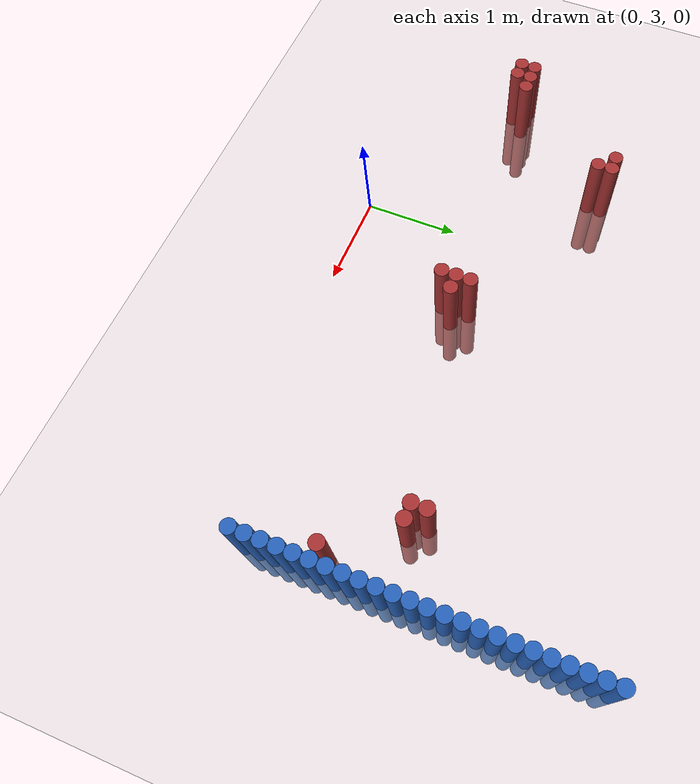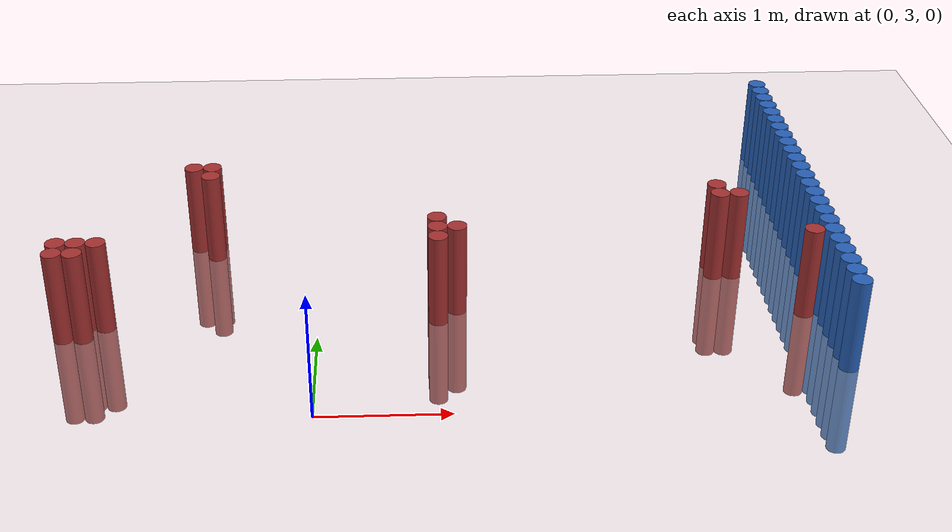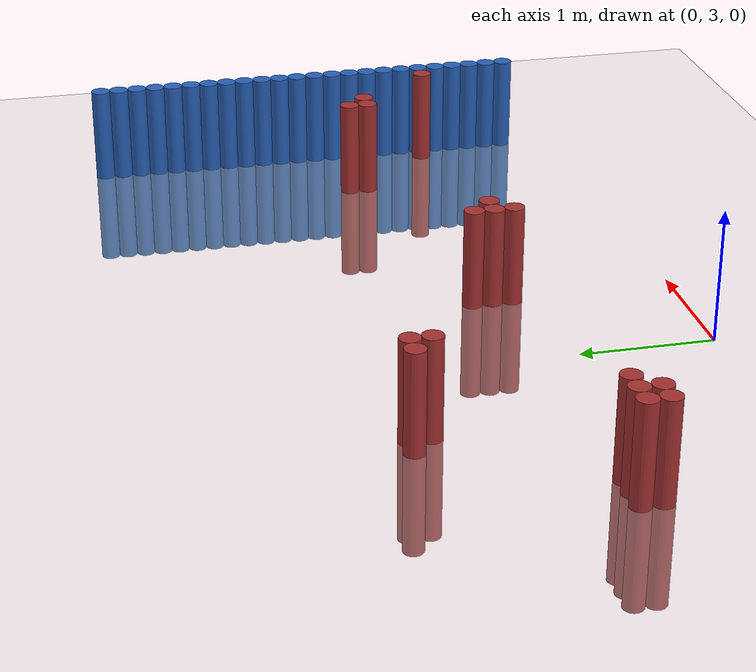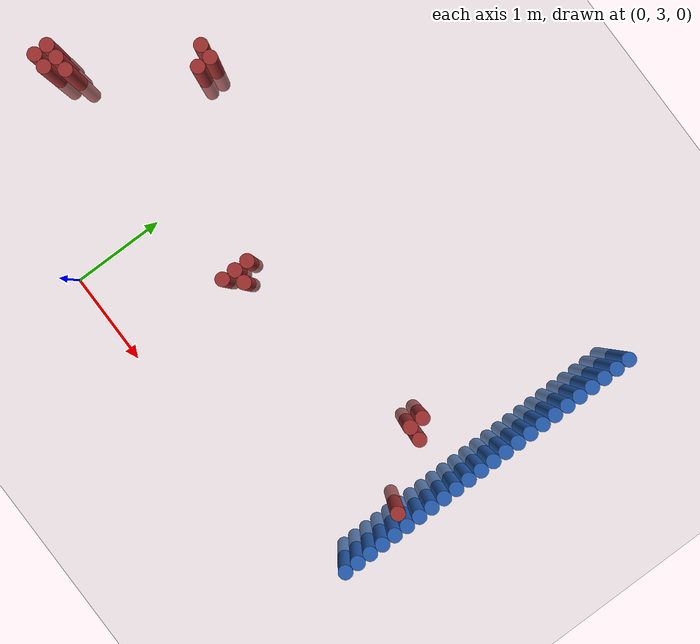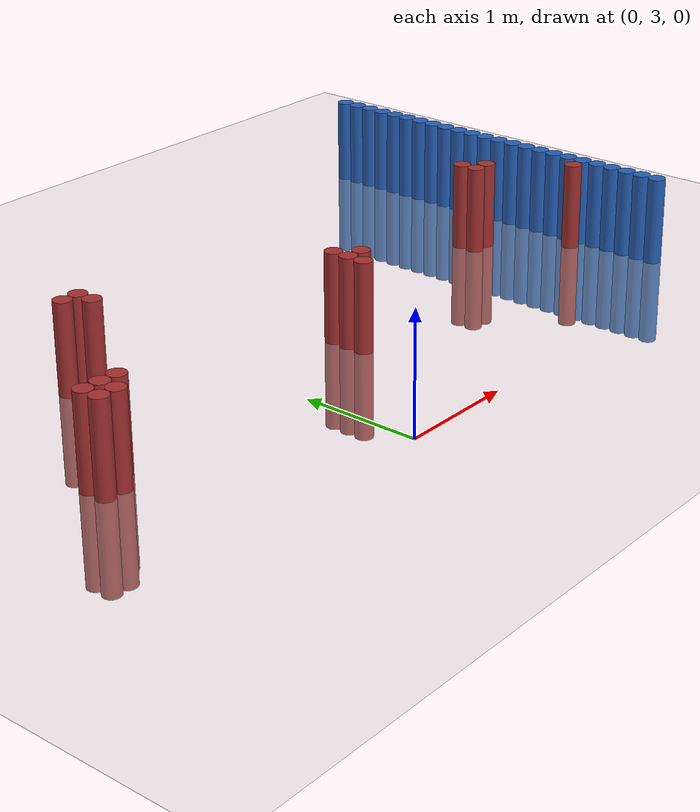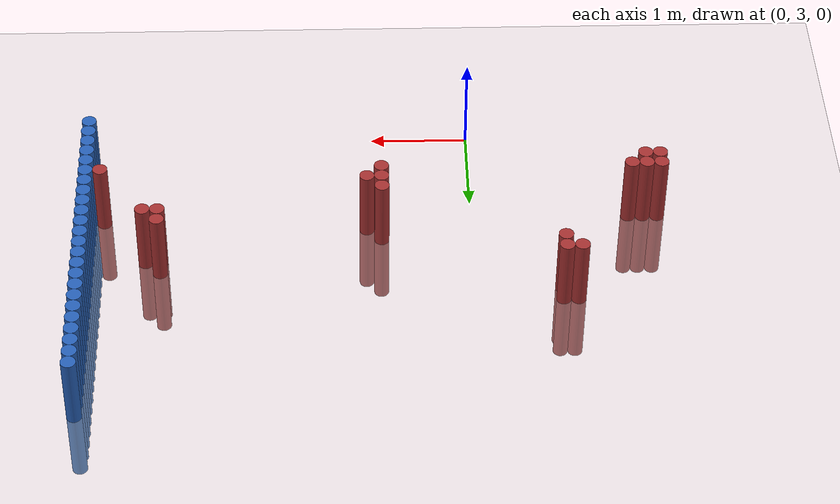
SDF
<sdf version="1.6">
 <world name="default">
  <model name="ground_plane">
   <static>1</static>
   <link name="link">
    <collision name="collision">
     <geometry><plane><normal>0 0 1</normal><size>100 100</size></plane></geometry>
     <surface><friction><ode><mu>100</mu><mu2>50</mu2></ode></friction></surface>
    </collision>
    <visual name="visual">
     <cast_shadows>0</cast_shadows>
     <geometry><plane><normal>0 0 1</normal><size>100 100</size></plane></geometry>
     <material>
      <script><uri>file://media/materials/scripts/gazebo.material</uri><name>Gazebo/Grey</name></script>
     </material>
    </visual>
   </link>
  </model>
  <model name="unit_cylinder_160">
   <static>1</static>
   <pose>3.925000 3.475000 0.000000 0.000000 0.000000 0.000000</pose>
   <link name="link">
    <inertial>
     <mass>1</mass>
     <inertia><ixx>0.145833</ixx><ixy>0</ixy><ixz>0</ixz><iyy>0.145833</iyy><iyz>0</iyz><izz>0.125</izz></inertia>
    </inertial>
    <collision name="collision">
     <geometry><cylinder><radius>0.075000</radius><length>1.5</length></cylinder></geometry>
    </collision>
    <visual name="visual">
     <geometry><cylinder><radius>0.075000</radius><length>1.5</length></cylinder></geometry>
     <material>
      <ambient>0.152000 0.379000 0.720000 1</ambient>
      <diffuse>0.152000 0.379000 0.720000 1</diffuse>
     </material>
     <material>
      <script><name>Gazebo/Grey</name><uri>file://media/materials/scripts/gazebo.material</uri></script>
     </material>
    </visual>
   </link>
  </model>
  <model name="unit_cylinder_162">
   <static>1</static>
   <pose>3.925000 3.625000 0.000000 0.000000 0.000000 0.000000</pose>
   <link name="link">
    <inertial>
     <mass>1</mass>
     <inertia><ixx>0.145833</ixx><ixy>0</ixy><ixz>0</ixz><iyy>0.145833</iyy><iyz>0</iyz><izz>0.125</izz></inertia>
    </inertial>
    <collision name="collision">
     <geometry><cylinder><radius>0.075000</radius><length>1.5</length></cylinder></geometry>
    </collision>
    <visual name="visual">
     <geometry><cylinder><radius>0.075000</radius><length>1.5</length></cylinder></geometry>
     <material>
      <ambient>0.152000 0.379000 0.720000 1</ambient>
      <diffuse>0.152000 0.379000 0.720000 1</diffuse>
     </material>
     <material>
      <script><name>Gazebo/Grey</name><uri>file://media/materials/scripts/gazebo.material</uri></script>
     </material>
    </visual>
   </link>
  </model>
  <model name="unit_cylinder_164">
   <static>1</static>
   <pose>3.925000 3.775000 0.000000 0.000000 0.000000 0.000000</pose>
   <link name="link">
    <inertial>
     <mass>1</mass>
     <inertia><ixx>0.145833</ixx><ixy>0</ixy><ixz>0</ixz><iyy>0.145833</iyy><iyz>0</iyz><izz>0.125</izz></inertia>
    </inertial>
    <collision name="collision">
     <geometry><cylinder><radius>0.075000</radius><length>1.5</length></cylinder></geometry>
    </collision>
    <visual name="visual">
     <geometry><cylinder><radius>0.075000</radius><length>1.5</length></cylinder></geometry>
     <material>
      <ambient>0.152000 0.379000 0.720000 1</ambient>
      <diffuse>0.152000 0.379000 0.720000 1</diffuse>
     </material>
     <material>
      <script><name>Gazebo/Grey</name><uri>file://media/materials/scripts/gazebo.material</uri></script>
     </material>
    </visual>
   </link>
  </model>
  <model name="unit_cylinder_166">
   <static>1</static>
   <pose>3.925000 3.925000 0.000000 0.000000 0.000000 0.000000</pose>
   <link name="link">
    <inertial>
     <mass>1</mass>
     <inertia><ixx>0.145833</ixx><ixy>0</ixy><ixz>0</ixz><iyy>0.145833</iyy><iyz>0</iyz><izz>0.125</izz></inertia>
    </inertial>
    <collision name="collision">
     <geometry><cylinder><radius>0.075000</radius><length>1.5</length></cylinder></geometry>
    </collision>
    <visual name="visual">
     <geometry><cylinder><radius>0.075000</radius><length>1.5</length></cylinder></geometry>
     <material>
      <ambient>0.152000 0.379000 0.720000 1</ambient>
      <diffuse>0.152000 0.379000 0.720000 1</diffuse>
     </material>
     <material>
      <script><name>Gazebo/Grey</name><uri>file://media/materials/scripts/gazebo.material</uri></script>
     </material>
    </visual>
   </link>
  </model>
  <model name="unit_cylinder_168">
   <static>1</static>
   <pose>3.925000 4.075000 0.000000 0.000000 0.000000 0.000000</pose>
   <link name="link">
    <inertial>
     <mass>1</mass>
     <inertia><ixx>0.145833</ixx><ixy>0</ixy><ixz>0</ixz><iyy>0.145833</iyy><iyz>0</iyz><izz>0.125</izz></inertia>
    </inertial>
    <collision name="collision">
     <geometry><cylinder><radius>0.075000</radius><length>1.5</length></cylinder></geometry>
    </collision>
    <visual name="visual">
     <geometry><cylinder><radius>0.075000</radius><length>1.5</length></cylinder></geometry>
     <material>
      <ambient>0.152000 0.379000 0.720000 1</ambient>
      <diffuse>0.152000 0.379000 0.720000 1</diffuse>
     </material>
     <material>
      <script><name>Gazebo/Grey</name><uri>file://media/materials/scripts/gazebo.material</uri></script>
     </material>
    </visual>
   </link>
  </model>
  <model name="unit_cylinder_170">
   <static>1</static>
   <pose>3.925000 4.225000 0.000000 0.000000 0.000000 0.000000</pose>
   <link name="link">
    <inertial>
     <mass>1</mass>
     <inertia><ixx>0.145833</ixx><ixy>0</ixy><ixz>0</ixz><iyy>0.145833</iyy><iyz>0</iyz><izz>0.125</izz></inertia>
    </inertial>
    <collision name="collision">
     <geometry><cylinder><radius>0.075000</radius><length>1.5</length></cylinder></geometry>
    </collision>
    <visual name="visual">
     <geometry><cylinder><radius>0.075000</radius><length>1.5</length></cylinder></geometry>
     <material>
      <ambient>0.152000 0.379000 0.720000 1</ambient>
      <diffuse>0.152000 0.379000 0.720000 1</diffuse>
     </material>
     <material>
      <script><name>Gazebo/Grey</name><uri>file://media/materials/scripts/gazebo.material</uri></script>
     </material>
    </visual>
   </link>
  </model>
  <model name="unit_cylinder_172">
   <static>1</static>
   <pose>3.925000 4.375000 0.000000 0.000000 0.000000 0.000000</pose>
   <link name="link">
    <inertial>
     <mass>1</mass>
     <inertia><ixx>0.145833</ixx><ixy>0</ixy><ixz>0</ixz><iyy>0.145833</iyy><iyz>0</iyz><izz>0.125</izz></inertia>
    </inertial>
    <collision name="collision">
     <geometry><cylinder><radius>0.075000</radius><length>1.5</length></cylinder></geometry>
    </collision>
    <visual name="visual">
     <geometry><cylinder><radius>0.075000</radius><length>1.5</length></cylinder></geometry>
     <material>
      <ambient>0.152000 0.379000 0.720000 1</ambient>
      <diffuse>0.152000 0.379000 0.720000 1</diffuse>
     </material>
     <material>
      <script><name>Gazebo/Grey</name><uri>file://media/materials/scripts/gazebo.material</uri></script>
     </material>
    </visual>
   </link>
  </model>
  <model name="unit_cylinder_174">
   <static>1</static>
   <pose>3.925000 4.525000 0.000000 0.000000 0.000000 0.000000</pose>
   <link name="link">
    <inertial>
     <mass>1</mass>
     <inertia><ixx>0.145833</ixx><ixy>0</ixy><ixz>0</ixz><iyy>0.145833</iyy><iyz>0</iyz><izz>0.125</izz></inertia>
    </inertial>
    <collision name="collision">
     <geometry><cylinder><radius>0.075000</radius><length>1.5</length></cylinder></geometry>
    </collision>
    <visual name="visual">
     <geometry><cylinder><radius>0.075000</radius><length>1.5</length></cylinder></geometry>
     <material>
      <ambient>0.152000 0.379000 0.720000 1</ambient>
      <diffuse>0.152000 0.379000 0.720000 1</diffuse>
     </material>
     <material>
      <script><name>Gazebo/Grey</name><uri>file://media/materials/scripts/gazebo.material</uri></script>
     </material>
    </visual>
   </link>
  </model>
  <model name="unit_cylinder_176">
   <static>1</static>
   <pose>3.925000 4.675000 0.000000 0.000000 0.000000 0.000000</pose>
   <link name="link">
    <inertial>
     <mass>1</mass>
     <inertia><ixx>0.145833</ixx><ixy>0</ixy><ixz>0</ixz><iyy>0.145833</iyy><iyz>0</iyz><izz>0.125</izz></inertia>
    </inertial>
    <collision name="collision">
     <geometry><cylinder><radius>0.075000</radius><length>1.5</length></cylinder></geometry>
    </collision>
    <visual name="visual">
     <geometry><cylinder><radius>0.075000</radius><length>1.5</length></cylinder></geometry>
     <material>
      <ambient>0.152000 0.379000 0.720000 1</ambient>
      <diffuse>0.152000 0.379000 0.720000 1</diffuse>
     </material>
     <material>
      <script><name>Gazebo/Grey</name><uri>file://media/materials/scripts/gazebo.material</uri></script>
     </material>
    </visual>
   </link>
  </model>
  <model name="unit_cylinder_178">
   <static>1</static>
   <pose>3.925000 4.825000 0.000000 0.000000 0.000000 0.000000</pose>
   <link name="link">
    <inertial>
     <mass>1</mass>
     <inertia><ixx>0.145833</ixx><ixy>0</ixy><ixz>0</ixz><iyy>0.145833</iyy><iyz>0</iyz><izz>0.125</izz></inertia>
    </inertial>
    <collision name="collision">
     <geometry><cylinder><radius>0.075000</radius><length>1.5</length></cylinder></geometry>
    </collision>
    <visual name="visual">
     <geometry><cylinder><radius>0.075000</radius><length>1.5</length></cylinder></geometry>
     <material>
      <ambient>0.152000 0.379000 0.720000 1</ambient>
      <diffuse>0.152000 0.379000 0.720000 1</diffuse>
     </material>
     <material>
      <script><name>Gazebo/Grey</name><uri>file://media/materials/scripts/gazebo.material</uri></script>
     </material>
    </visual>
   </link>
  </model>
  <model name="unit_cylinder_180">
   <static>1</static>
   <pose>3.925000 4.975000 0.000000 0.000000 0.000000 0.000000</pose>
   <link name="link">
    <inertial>
     <mass>1</mass>
     <inertia><ixx>0.145833</ixx><ixy>0</ixy><ixz>0</ixz><iyy>0.145833</iyy><iyz>0</iyz><izz>0.125</izz></inertia>
    </inertial>
    <collision name="collision">
     <geometry><cylinder><radius>0.075000</radius><length>1.5</length></cylinder></geometry>
    </collision>
    <visual name="visual">
     <geometry><cylinder><radius>0.075000</radius><length>1.5</length></cylinder></geometry>
     <material>
      <ambient>0.152000 0.379000 0.720000 1</ambient>
      <diffuse>0.152000 0.379000 0.720000 1</diffuse>
     </material>
     <material>
      <script><name>Gazebo/Grey</name><uri>file://media/materials/scripts/gazebo.material</uri></script>
     </material>
    </visual>
   </link>
  </model>
  <model name="unit_cylinder_182">
   <static>1</static>
   <pose>3.925000 5.125000 0.000000 0.000000 0.000000 0.000000</pose>
   <link name="link">
    <inertial>
     <mass>1</mass>
     <inertia><ixx>0.145833</ixx><ixy>0</ixy><ixz>0</ixz><iyy>0.145833</iyy><iyz>0</iyz><izz>0.125</izz></inertia>
    </inertial>
    <collision name="collision">
     <geometry><cylinder><radius>0.075000</radius><length>1.5</length></cylinder></geometry>
    </collision>
    <visual name="visual">
     <geometry><cylinder><radius>0.075000</radius><length>1.5</length></cylinder></geometry>
     <material>
      <ambient>0.152000 0.379000 0.720000 1</ambient>
      <diffuse>0.152000 0.379000 0.720000 1</diffuse>
     </material>
     <material>
      <script><name>Gazebo/Grey</name><uri>file://media/materials/scripts/gazebo.material</uri></script>
     </material>
    </visual>
   </link>
  </model>
  <model name="unit_cylinder_184">
   <static>1</static>
   <pose>3.925000 5.275000 0.000000 0.000000 0.000000 0.000000</pose>
   <link name="link">
    <inertial>
     <mass>1</mass>
     <inertia><ixx>0.145833</ixx><ixy>0</ixy><ixz>0</ixz><iyy>0.145833</iyy><iyz>0</iyz><izz>0.125</izz></inertia>
    </inertial>
    <collision name="collision">
     <geometry><cylinder><radius>0.075000</radius><length>1.5</length></cylinder></geometry>
    </collision>
    <visual name="visual">
     <geometry><cylinder><radius>0.075000</radius><length>1.5</length></cylinder></geometry>
     <material>
      <ambient>0.152000 0.379000 0.720000 1</ambient>
      <diffuse>0.152000 0.379000 0.720000 1</diffuse>
     </material>
     <material>
      <script><name>Gazebo/Grey</name><uri>file://media/materials/scripts/gazebo.material</uri></script>
     </material>
    </visual>
   </link>
  </model>
  <model name="unit_cylinder_186">
   <static>1</static>
   <pose>3.925000 5.425000 0.000000 0.000000 0.000000 0.000000</pose>
   <link name="link">
    <inertial>
     <mass>1</mass>
     <inertia><ixx>0.145833</ixx><ixy>0</ixy><ixz>0</ixz><iyy>0.145833</iyy><iyz>0</iyz><izz>0.125</izz></inertia>
    </inertial>
    <collision name="collision">
     <geometry><cylinder><radius>0.075000</radius><length>1.5</length></cylinder></geometry>
    </collision>
    <visual name="visual">
     <geometry><cylinder><radius>0.075000</radius><length>1.5</length></cylinder></geometry>
     <material>
      <ambient>0.152000 0.379000 0.720000 1</ambient>
      <diffuse>0.152000 0.379000 0.720000 1</diffuse>
     </material>
     <material>
      <script><name>Gazebo/Grey</name><uri>file://media/materials/scripts/gazebo.material</uri></script>
     </material>
    </visual>
   </link>
  </model>
  <model name="unit_cylinder_188">
   <static>1</static>
   <pose>3.925000 5.575000 0.000000 0.000000 0.000000 0.000000</pose>
   <link name="link">
    <inertial>
     <mass>1</mass>
     <inertia><ixx>0.145833</ixx><ixy>0</ixy><ixz>0</ixz><iyy>0.145833</iyy><iyz>0</iyz><izz>0.125</izz></inertia>
    </inertial>
    <collision name="collision">
     <geometry><cylinder><radius>0.075000</radius><length>1.5</length></cylinder></geometry>
    </collision>
    <visual name="visual">
     <geometry><cylinder><radius>0.075000</radius><length>1.5</length></cylinder></geometry>
     <material>
      <ambient>0.152000 0.379000 0.720000 1</ambient>
      <diffuse>0.152000 0.379000 0.720000 1</diffuse>
     </material>
     <material>
      <script><name>Gazebo/Grey</name><uri>file://media/materials/scripts/gazebo.material</uri></script>
     </material>
    </visual>
   </link>
  </model>
  <model name="unit_cylinder_190">
   <static>1</static>
   <pose>3.925000 5.725000 0.000000 0.000000 0.000000 0.000000</pose>
   <link name="link">
    <inertial>
     <mass>1</mass>
     <inertia><ixx>0.145833</ixx><ixy>0</ixy><ixz>0</ixz><iyy>0.145833</iyy><iyz>0</iyz><izz>0.125</izz></inertia>
    </inertial>
    <collision name="collision">
     <geometry><cylinder><radius>0.075000</radius><length>1.5</length></cylinder></geometry>
    </collision>
    <visual name="visual">
     <geometry><cylinder><radius>0.075000</radius><length>1.5</length></cylinder></geometry>
     <material>
      <ambient>0.152000 0.379000 0.720000 1</ambient>
      <diffuse>0.152000 0.379000 0.720000 1</diffuse>
     </material>
     <material>
      <script><name>Gazebo/Grey</name><uri>file://media/materials/scripts/gazebo.material</uri></script>
     </material>
    </visual>
   </link>
  </model>
  <model name="unit_cylinder_192">
   <static>1</static>
   <pose>3.925000 5.875000 0.000000 0.000000 0.000000 0.000000</pose>
   <link name="link">
    <inertial>
     <mass>1</mass>
     <inertia><ixx>0.145833</ixx><ixy>0</ixy><ixz>0</ixz><iyy>0.145833</iyy><iyz>0</iyz><izz>0.125</izz></inertia>
    </inertial>
    <collision name="collision">
     <geometry><cylinder><radius>0.075000</radius><length>1.5</length></cylinder></geometry>
    </collision>
    <visual name="visual">
     <geometry><cylinder><radius>0.075000</radius><length>1.5</length></cylinder></geometry>
     <material>
      <ambient>0.152000 0.379000 0.720000 1</ambient>
      <diffuse>0.152000 0.379000 0.720000 1</diffuse>
     </material>
     <material>
      <script><name>Gazebo/Grey</name><uri>file://media/materials/scripts/gazebo.material</uri></script>
     </material>
    </visual>
   </link>
  </model>
  <model name="unit_cylinder_194">
   <static>1</static>
   <pose>3.925000 6.025000 0.000000 0.000000 0.000000 0.000000</pose>
   <link name="link">
    <inertial>
     <mass>1</mass>
     <inertia><ixx>0.145833</ixx><ixy>0</ixy><ixz>0</ixz><iyy>0.145833</iyy><iyz>0</iyz><izz>0.125</izz></inertia>
    </inertial>
    <collision name="collision">
     <geometry><cylinder><radius>0.075000</radius><length>1.5</length></cylinder></geometry>
    </collision>
    <visual name="visual">
     <geometry><cylinder><radius>0.075000</radius><length>1.5</length></cylinder></geometry>
     <material>
      <ambient>0.152000 0.379000 0.720000 1</ambient>
      <diffuse>0.152000 0.379000 0.720000 1</diffuse>
     </material>
     <material>
      <script><name>Gazebo/Grey</name><uri>file://media/materials/scripts/gazebo.material</uri></script>
     </material>
    </visual>
   </link>
  </model>
  <model name="unit_cylinder_196">
   <static>1</static>
   <pose>3.925000 6.175000 0.000000 0.000000 0.000000 0.000000</pose>
   <link name="link">
    <inertial>
     <mass>1</mass>
     <inertia><ixx>0.145833</ixx><ixy>0</ixy><ixz>0</ixz><iyy>0.145833</iyy><iyz>0</iyz><izz>0.125</izz></inertia>
    </inertial>
    <collision name="collision">
     <geometry><cylinder><radius>0.075000</radius><length>1.5</length></cylinder></geometry>
    </collision>
    <visual name="visual">
     <geometry><cylinder><radius>0.075000</radius><length>1.5</length></cylinder></geometry>
     <material>
      <ambient>0.152000 0.379000 0.720000 1</ambient>
      <diffuse>0.152000 0.379000 0.720000 1</diffuse>
     </material>
     <material>
      <script><name>Gazebo/Grey</name><uri>file://media/materials/scripts/gazebo.material</uri></script>
     </material>
    </visual>
   </link>
  </model>
  <model name="unit_cylinder_198">
   <static>1</static>
   <pose>3.925000 6.325000 0.000000 0.000000 0.000000 0.000000</pose>
   <link name="link">
    <inertial>
     <mass>1</mass>
     <inertia><ixx>0.145833</ixx><ixy>0</ixy><ixz>0</ixz><iyy>0.145833</iyy><iyz>0</iyz><izz>0.125</izz></inertia>
    </inertial>
    <collision name="collision">
     <geometry><cylinder><radius>0.075000</radius><length>1.5</length></cylinder></geometry>
    </collision>
    <visual name="visual">
     <geometry><cylinder><radius>0.075000</radius><length>1.5</length></cylinder></geometry>
     <material>
      <ambient>0.152000 0.379000 0.720000 1</ambient>
      <diffuse>0.152000 0.379000 0.720000 1</diffuse>
     </material>
     <material>
      <script><name>Gazebo/Grey</name><uri>file://media/materials/scripts/gazebo.material</uri></script>
     </material>
    </visual>
   </link>
  </model>
  <model name="unit_cylinder_200">
   <static>1</static>
   <pose>3.925000 6.475000 0.000000 0.000000 0.000000 0.000000</pose>
   <link name="link">
    <inertial>
     <mass>1</mass>
     <inertia><ixx>0.145833</ixx><ixy>0</ixy><ixz>0</ixz><iyy>0.145833</iyy><iyz>0</iyz><izz>0.125</izz></inertia>
    </inertial>
    <collision name="collision">
     <geometry><cylinder><radius>0.075000</radius><length>1.5</length></cylinder></geometry>
    </collision>
    <visual name="visual">
     <geometry><cylinder><radius>0.075000</radius><length>1.5</length></cylinder></geometry>
     <material>
      <ambient>0.152000 0.379000 0.720000 1</ambient>
      <diffuse>0.152000 0.379000 0.720000 1</diffuse>
     </material>
     <material>
      <script><name>Gazebo/Grey</name><uri>file://media/materials/scripts/gazebo.material</uri></script>
     </material>
    </visual>
   </link>
  </model>
  <model name="unit_cylinder_202">
   <static>1</static>
   <pose>3.925000 6.625000 0.000000 0.000000 0.000000 0.000000</pose>
   <link name="link">
    <inertial>
     <mass>1</mass>
     <inertia><ixx>0.145833</ixx><ixy>0</ixy><ixz>0</ixz><iyy>0.145833</iyy><iyz>0</iyz><izz>0.125</izz></inertia>
    </inertial>
    <collision name="collision">
     <geometry><cylinder><radius>0.075000</radius><length>1.5</length></cylinder></geometry>
    </collision>
    <visual name="visual">
     <geometry><cylinder><radius>0.075000</radius><length>1.5</length></cylinder></geometry>
     <material>
      <ambient>0.152000 0.379000 0.720000 1</ambient>
      <diffuse>0.152000 0.379000 0.720000 1</diffuse>
     </material>
     <material>
      <script><name>Gazebo/Grey</name><uri>file://media/materials/scripts/gazebo.material</uri></script>
     </material>
    </visual>
   </link>
  </model>
  <model name="unit_cylinder_204">
   <static>1</static>
   <pose>3.925000 6.775000 0.000000 0.000000 0.000000 0.000000</pose>
   <link name="link">
    <inertial>
     <mass>1</mass>
     <inertia><ixx>0.145833</ixx><ixy>0</ixy><ixz>0</ixz><iyy>0.145833</iyy><iyz>0</iyz><izz>0.125</izz></inertia>
    </inertial>
    <collision name="collision">
     <geometry><cylinder><radius>0.075000</radius><length>1.5</length></cylinder></geometry>
    </collision>
    <visual name="visual">
     <geometry><cylinder><radius>0.075000</radius><length>1.5</length></cylinder></geometry>
     <material>
      <ambient>0.152000 0.379000 0.720000 1</ambient>
      <diffuse>0.152000 0.379000 0.720000 1</diffuse>
     </material>
     <material>
      <script><name>Gazebo/Grey</name><uri>file://media/materials/scripts/gazebo.material</uri></script>
     </material>
    </visual>
   </link>
  </model>
  <model name="unit_cylinder_206">
   <static>1</static>
   <pose>3.925000 6.925000 0.000000 0.000000 0.000000 0.000000</pose>
   <link name="link">
    <inertial>
     <mass>1</mass>
     <inertia><ixx>0.145833</ixx><ixy>0</ixy><ixz>0</ixz><iyy>0.145833</iyy><iyz>0</iyz><izz>0.125</izz></inertia>
    </inertial>
    <collision name="collision">
     <geometry><cylinder><radius>0.075000</radius><length>1.5</length></cylinder></geometry>
    </collision>
    <visual name="visual">
     <geometry><cylinder><radius>0.075000</radius><length>1.5</length></cylinder></geometry>
     <material>
      <ambient>0.152000 0.379000 0.720000 1</ambient>
      <diffuse>0.152000 0.379000 0.720000 1</diffuse>
     </material>
     <material>
      <script><name>Gazebo/Grey</name><uri>file://media/materials/scripts/gazebo.material</uri></script>
     </material>
    </visual>
   </link>
  </model>
  <model name="unit_cylinder_302">
   <static>1</static>
   <pose>-1.925000 4.075000 0.000000 0.000000 0.000000 0.000000</pose>
   <link name="link">
    <inertial>
     <mass>1</mass>
     <inertia><ixx>0.145833</ixx><ixy>0</ixy><ixz>0</ixz><iyy>0.145833</iyy><iyz>0</iyz><izz>0.125</izz></inertia>
    </inertial>
    <collision name="collision">
     <geometry><cylinder><radius>0.075000</radius><length>1.5</length></cylinder></geometry>
    </collision>
    <visual name="visual">
     <geometry><cylinder><radius>0.075000</radius><length>1.5</length></cylinder></geometry>
     <material>
      <ambient>0.648000 0.192000 0.192000 1</ambient>
      <diffuse>0.648000 0.192000 0.192000 1</diffuse>
     </material>
     <material>
      <script><name>Gazebo/Grey</name><uri>file://media/materials/scripts/gazebo.material</uri></script>
     </material>
    </visual>
   </link>
  </model>
  <model name="unit_cylinder_303">
   <static>1</static>
   <pose>-1.925000 4.225000 0.000000 0.000000 0.000000 0.000000</pose>
   <link name="link">
    <inertial>
     <mass>1</mass>
     <inertia><ixx>0.145833</ixx><ixy>0</ixy><ixz>0</ixz><iyy>0.145833</iyy><iyz>0</iyz><izz>0.125</izz></inertia>
    </inertial>
    <collision name="collision">
     <geometry><cylinder><radius>0.075000</radius><length>1.5</length></cylinder></geometry>
    </collision>
    <visual name="visual">
     <geometry><cylinder><radius>0.075000</radius><length>1.5</length></cylinder></geometry>
     <material>
      <ambient>0.648000 0.192000 0.192000 1</ambient>
      <diffuse>0.648000 0.192000 0.192000 1</diffuse>
     </material>
     <material>
      <script><name>Gazebo/Grey</name><uri>file://media/materials/scripts/gazebo.material</uri></script>
     </material>
    </visual>
   </link>
  </model>
  <model name="unit_cylinder_304">
   <static>1</static>
   <pose>-1.775000 4.075000 0.000000 0.000000 0.000000 0.000000</pose>
   <link name="link">
    <inertial>
     <mass>1</mass>
     <inertia><ixx>0.145833</ixx><ixy>0</ixy><ixz>0</ixz><iyy>0.145833</iyy><iyz>0</iyz><izz>0.125</izz></inertia>
    </inertial>
    <collision name="collision">
     <geometry><cylinder><radius>0.075000</radius><length>1.5</length></cylinder></geometry>
    </collision>
    <visual name="visual">
     <geometry><cylinder><radius>0.075000</radius><length>1.5</length></cylinder></geometry>
     <material>
      <ambient>0.648000 0.192000 0.192000 1</ambient>
      <diffuse>0.648000 0.192000 0.192000 1</diffuse>
     </material>
     <material>
      <script><name>Gazebo/Grey</name><uri>file://media/materials/scripts/gazebo.material</uri></script>
     </material>
    </visual>
   </link>
  </model>
  <model name="unit_cylinder_305">
   <static>1</static>
   <pose>-1.775000 4.225000 0.000000 0.000000 0.000000 0.000000</pose>
   <link name="link">
    <inertial>
     <mass>1</mass>
     <inertia><ixx>0.145833</ixx><ixy>0</ixy><ixz>0</ixz><iyy>0.145833</iyy><iyz>0</iyz><izz>0.125</izz></inertia>
    </inertial>
    <collision name="collision">
     <geometry><cylinder><radius>0.075000</radius><length>1.5</length></cylinder></geometry>
    </collision>
    <visual name="visual">
     <geometry><cylinder><radius>0.075000</radius><length>1.5</length></cylinder></geometry>
     <material>
      <ambient>0.648000 0.192000 0.192000 1</ambient>
      <diffuse>0.648000 0.192000 0.192000 1</diffuse>
     </material>
     <material>
      <script><name>Gazebo/Grey</name><uri>file://media/materials/scripts/gazebo.material</uri></script>
     </material>
    </visual>
   </link>
  </model>
  <model name="unit_cylinder_306">
   <static>1</static>
   <pose>-1.625000 4.225000 0.000000 0.000000 0.000000 0.000000</pose>
   <link name="link">
    <inertial>
     <mass>1</mass>
     <inertia><ixx>0.145833</ixx><ixy>0</ixy><ixz>0</ixz><iyy>0.145833</iyy><iyz>0</iyz><izz>0.125</izz></inertia>
    </inertial>
    <collision name="collision">
     <geometry><cylinder><radius>0.075000</radius><length>1.5</length></cylinder></geometry>
    </collision>
    <visual name="visual">
     <geometry><cylinder><radius>0.075000</radius><length>1.5</length></cylinder></geometry>
     <material>
      <ambient>0.648000 0.192000 0.192000 1</ambient>
      <diffuse>0.648000 0.192000 0.192000 1</diffuse>
     </material>
     <material>
      <script><name>Gazebo/Grey</name><uri>file://media/materials/scripts/gazebo.material</uri></script>
     </material>
    </visual>
   </link>
  </model>
  <model name="unit_cylinder_310">
   <static>1</static>
   <pose>-1.025000 5.425000 0.000000 0.000000 0.000000 0.000000</pose>
   <link name="link">
    <inertial>
     <mass>1</mass>
     <inertia><ixx>0.145833</ixx><ixy>0</ixy><ixz>0</ixz><iyy>0.145833</iyy><iyz>0</iyz><izz>0.125</izz></inertia>
    </inertial>
    <collision name="collision">
     <geometry><cylinder><radius>0.075000</radius><length>1.5</length></cylinder></geometry>
    </collision>
    <visual name="visual">
     <geometry><cylinder><radius>0.075000</radius><length>1.5</length></cylinder></geometry>
     <material>
      <ambient>0.648000 0.192000 0.192000 1</ambient>
      <diffuse>0.648000 0.192000 0.192000 1</diffuse>
     </material>
     <material>
      <script><name>Gazebo/Grey</name><uri>file://media/materials/scripts/gazebo.material</uri></script>
     </material>
    </visual>
   </link>
  </model>
  <model name="unit_cylinder_312">
   <static>1</static>
   <pose>-0.875000 5.275000 0.000000 0.000000 0.000000 0.000000</pose>
   <link name="link">
    <inertial>
     <mass>1</mass>
     <inertia><ixx>0.145833</ixx><ixy>0</ixy><ixz>0</ixz><iyy>0.145833</iyy><iyz>0</iyz><izz>0.125</izz></inertia>
    </inertial>
    <collision name="collision">
     <geometry><cylinder><radius>0.075000</radius><length>1.5</length></cylinder></geometry>
    </collision>
    <visual name="visual">
     <geometry><cylinder><radius>0.075000</radius><length>1.5</length></cylinder></geometry>
     <material>
      <ambient>0.648000 0.192000 0.192000 1</ambient>
      <diffuse>0.648000 0.192000 0.192000 1</diffuse>
     </material>
     <material>
      <script><name>Gazebo/Grey</name><uri>file://media/materials/scripts/gazebo.material</uri></script>
     </material>
    </visual>
   </link>
  </model>
  <model name="unit_cylinder_313">
   <static>1</static>
   <pose>-0.875000 5.425000 0.000000 0.000000 0.000000 0.000000</pose>
   <link name="link">
    <inertial>
     <mass>1</mass>
     <inertia><ixx>0.145833</ixx><ixy>0</ixy><ixz>0</ixz><iyy>0.145833</iyy><iyz>0</iyz><izz>0.125</izz></inertia>
    </inertial>
    <collision name="collision">
     <geometry><cylinder><radius>0.075000</radius><length>1.5</length></cylinder></geometry>
    </collision>
    <visual name="visual">
     <geometry><cylinder><radius>0.075000</radius><length>1.5</length></cylinder></geometry>
     <material>
      <ambient>0.648000 0.192000 0.192000 1</ambient>
      <diffuse>0.648000 0.192000 0.192000 1</diffuse>
     </material>
     <material>
      <script><name>Gazebo/Grey</name><uri>file://media/materials/scripts/gazebo.material</uri></script>
     </material>
    </visual>
   </link>
  </model>
  <model name="unit_cylinder_334">
   <static>1</static>
   <pose>0.925000 4.225000 0.000000 0.000000 0.000000 0.000000</pose>
   <link name="link">
    <inertial>
     <mass>1</mass>
     <inertia><ixx>0.145833</ixx><ixy>0</ixy><ixz>0</ixz><iyy>0.145833</iyy><iyz>0</iyz><izz>0.125</izz></inertia>
    </inertial>
    <collision name="collision">
     <geometry><cylinder><radius>0.075000</radius><length>1.5</length></cylinder></geometry>
    </collision>
    <visual name="visual">
     <geometry><cylinder><radius>0.075000</radius><length>1.5</length></cylinder></geometry>
     <material>
      <ambient>0.648000 0.192000 0.192000 1</ambient>
      <diffuse>0.648000 0.192000 0.192000 1</diffuse>
     </material>
     <material>
      <script><name>Gazebo/Grey</name><uri>file://media/materials/scripts/gazebo.material</uri></script>
     </material>
    </visual>
   </link>
  </model>
  <model name="unit_cylinder_335">
   <static>1</static>
   <pose>0.925000 4.375000 0.000000 0.000000 0.000000 0.000000</pose>
   <link name="link">
    <inertial>
     <mass>1</mass>
     <inertia><ixx>0.145833</ixx><ixy>0</ixy><ixz>0</ixz><iyy>0.145833</iyy><iyz>0</iyz><izz>0.125</izz></inertia>
    </inertial>
    <collision name="collision">
     <geometry><cylinder><radius>0.075000</radius><length>1.5</length></cylinder></geometry>
    </collision>
    <visual name="visual">
     <geometry><cylinder><radius>0.075000</radius><length>1.5</length></cylinder></geometry>
     <material>
      <ambient>0.648000 0.192000 0.192000 1</ambient>
      <diffuse>0.648000 0.192000 0.192000 1</diffuse>
     </material>
     <material>
      <script><name>Gazebo/Grey</name><uri>file://media/materials/scripts/gazebo.material</uri></script>
     </material>
    </visual>
   </link>
  </model>
  <model name="unit_cylinder_336">
   <static>1</static>
   <pose>0.925000 4.525000 0.000000 0.000000 0.000000 0.000000</pose>
   <link name="link">
    <inertial>
     <mass>1</mass>
     <inertia><ixx>0.145833</ixx><ixy>0</ixy><ixz>0</ixz><iyy>0.145833</iyy><iyz>0</iyz><izz>0.125</izz></inertia>
    </inertial>
    <collision name="collision">
     <geometry><cylinder><radius>0.075000</radius><length>1.5</length></cylinder></geometry>
    </collision>
    <visual name="visual">
     <geometry><cylinder><radius>0.075000</radius><length>1.5</length></cylinder></geometry>
     <material>
      <ambient>0.648000 0.192000 0.192000 1</ambient>
      <diffuse>0.648000 0.192000 0.192000 1</diffuse>
     </material>
     <material>
      <script><name>Gazebo/Grey</name><uri>file://media/materials/scripts/gazebo.material</uri></script>
     </material>
    </visual>
   </link>
  </model>
  <model name="unit_cylinder_339">
   <static>1</static>
   <pose>1.075000 4.375000 0.000000 0.000000 0.000000 0.000000</pose>
   <link name="link">
    <inertial>
     <mass>1</mass>
     <inertia><ixx>0.145833</ixx><ixy>0</ixy><ixz>0</ixz><iyy>0.145833</iyy><iyz>0</iyz><izz>0.125</izz></inertia>
    </inertial>
    <collision name="collision">
     <geometry><cylinder><radius>0.075000</radius><length>1.5</length></cylinder></geometry>
    </collision>
    <visual name="visual">
     <geometry><cylinder><radius>0.075000</radius><length>1.5</length></cylinder></geometry>
     <material>
      <ambient>0.648000 0.192000 0.192000 1</ambient>
      <diffuse>0.648000 0.192000 0.192000 1</diffuse>
     </material>
     <material>
      <script><name>Gazebo/Grey</name><uri>file://media/materials/scripts/gazebo.material</uri></script>
     </material>
    </visual>
   </link>
  </model>
  <model name="unit_cylinder_362">
   <static>1</static>
   <pose>3.175000 4.825000 0.000000 0.000000 0.000000 0.000000</pose>
   <link name="link">
    <inertial>
     <mass>1</mass>
     <inertia><ixx>0.145833</ixx><ixy>0</ixy><ixz>0</ixz><iyy>0.145833</iyy><iyz>0</iyz><izz>0.125</izz></inertia>
    </inertial>
    <collision name="collision">
     <geometry><cylinder><radius>0.075000</radius><length>1.5</length></cylinder></geometry>
    </collision>
    <visual name="visual">
     <geometry><cylinder><radius>0.075000</radius><length>1.5</length></cylinder></geometry>
     <material>
      <ambient>0.648000 0.192000 0.192000 1</ambient>
      <diffuse>0.648000 0.192000 0.192000 1</diffuse>
     </material>
     <material>
      <script><name>Gazebo/Grey</name><uri>file://media/materials/scripts/gazebo.material</uri></script>
     </material>
    </visual>
   </link>
  </model>
  <model name="unit_cylinder_363">
   <static>1</static>
   <pose>3.175000 4.975000 0.000000 0.000000 0.000000 0.000000</pose>
   <link name="link">
    <inertial>
     <mass>1</mass>
     <inertia><ixx>0.145833</ixx><ixy>0</ixy><ixz>0</ixz><iyy>0.145833</iyy><iyz>0</iyz><izz>0.125</izz></inertia>
    </inertial>
    <collision name="collision">
     <geometry><cylinder><radius>0.075000</radius><length>1.5</length></cylinder></geometry>
    </collision>
    <visual name="visual">
     <geometry><cylinder><radius>0.075000</radius><length>1.5</length></cylinder></geometry>
     <material>
      <ambient>0.648000 0.192000 0.192000 1</ambient>
      <diffuse>0.648000 0.192000 0.192000 1</diffuse>
     </material>
     <material>
      <script><name>Gazebo/Grey</name><uri>file://media/materials/scripts/gazebo.material</uri></script>
     </material>
    </visual>
   </link>
  </model>
  <model name="unit_cylinder_368">
   <static>1</static>
   <pose>3.325000 4.825000 0.000000 0.000000 0.000000 0.000000</pose>
   <link name="link">
    <inertial>
     <mass>1</mass>
     <inertia><ixx>0.145833</ixx><ixy>0</ixy><ixz>0</ixz><iyy>0.145833</iyy><iyz>0</iyz><izz>0.125</izz></inertia>
    </inertial>
    <collision name="collision">
     <geometry><cylinder><radius>0.075000</radius><length>1.5</length></cylinder></geometry>
    </collision>
    <visual name="visual">
     <geometry><cylinder><radius>0.075000</radius><length>1.5</length></cylinder></geometry>
     <material>
      <ambient>0.648000 0.192000 0.192000 1</ambient>
      <diffuse>0.648000 0.192000 0.192000 1</diffuse>
     </material>
     <material>
      <script><name>Gazebo/Grey</name><uri>file://media/materials/scripts/gazebo.material</uri></script>
     </material>
    </visual>
   </link>
  </model>
  <model name="unit_cylinder_381">
   <static>1</static>
   <pose>3.775000 4.225000 0.000000 0.000000 0.000000 0.000000</pose>
   <link name="link">
    <inertial>
     <mass>1</mass>
     <inertia><ixx>0.145833</ixx><ixy>0</ixy><ixz>0</ixz><iyy>0.145833</iyy><iyz>0</iyz><izz>0.125</izz></inertia>
    </inertial>
    <collision name="collision">
     <geometry><cylinder><radius>0.075000</radius><length>1.5</length></cylinder></geometry>
    </collision>
    <visual name="visual">
     <geometry><cylinder><radius>0.075000</radius><length>1.5</length></cylinder></geometry>
     <material>
      <ambient>0.648000 0.192000 0.192000 1</ambient>
      <diffuse>0.648000 0.192000 0.192000 1</diffuse>
     </material>
     <material>
      <script><name>Gazebo/Grey</name><uri>file://media/materials/scripts/gazebo.material</uri></script>
     </material>
    </visual>
   </link>
  </model>
  <model name="unit_cylinder_418">
   <static>1</static>
   <pose>3.925000 3.475000 0.000000 0.000000 0.000000 0.000000</pose>
   <link name="link">
    <inertial>
     <mass>1</mass>
     <inertia><ixx>0.145833</ixx><ixy>0</ixy><ixz>0</ixz><iyy>0.145833</iyy><iyz>0</iyz><izz>0.125</izz></inertia>
    </inertial>
    <collision name="collision">
     <geometry><cylinder><radius>0.075000</radius><length>1.5</length></cylinder></geometry>
    </collision>
    <visual name="visual">
     <geometry><cylinder><radius>0.075000</radius><length>1.5</length></cylinder></geometry>
     <material>
      <ambient>0.152000 0.379000 0.720000 1</ambient>
      <diffuse>0.152000 0.379000 0.720000 1</diffuse>
     </material>
     <material>
      <script><name>Gazebo/Grey</name><uri>file://media/materials/scripts/gazebo.material</uri></script>
     </material>
    </visual>
   </link>
  </model>
  <model name="unit_cylinder_419">
   <static>1</static>
   <pose>3.925000 3.625000 0.000000 0.000000 0.000000 0.000000</pose>
   <link name="link">
    <inertial>
     <mass>1</mass>
     <inertia><ixx>0.145833</ixx><ixy>0</ixy><ixz>0</ixz><iyy>0.145833</iyy><iyz>0</iyz><izz>0.125</izz></inertia>
    </inertial>
    <collision name="collision">
     <geometry><cylinder><radius>0.075000</radius><length>1.5</length></cylinder></geometry>
    </collision>
    <visual name="visual">
     <geometry><cylinder><radius>0.075000</radius><length>1.5</length></cylinder></geometry>
     <material>
      <ambient>0.152000 0.379000 0.720000 1</ambient>
      <diffuse>0.152000 0.379000 0.720000 1</diffuse>
     </material>
     <material>
      <script><name>Gazebo/Grey</name><uri>file://media/materials/scripts/gazebo.material</uri></script>
     </material>
    </visual>
   </link>
  </model>
  <model name="unit_cylinder_420">
   <static>1</static>
   <pose>3.925000 3.775000 0.000000 0.000000 0.000000 0.000000</pose>
   <link name="link">
    <inertial>
     <mass>1</mass>
     <inertia><ixx>0.145833</ixx><ixy>0</ixy><ixz>0</ixz><iyy>0.145833</iyy><iyz>0</iyz><izz>0.125</izz></inertia>
    </inertial>
    <collision name="collision">
     <geometry><cylinder><radius>0.075000</radius><length>1.5</length></cylinder></geometry>
    </collision>
    <visual name="visual">
     <geometry><cylinder><radius>0.075000</radius><length>1.5</length></cylinder></geometry>
     <material>
      <ambient>0.152000 0.379000 0.720000 1</ambient>
      <diffuse>0.152000 0.379000 0.720000 1</diffuse>
     </material>
     <material>
      <script><name>Gazebo/Grey</name><uri>file://media/materials/scripts/gazebo.material</uri></script>
     </material>
    </visual>
   </link>
  </model>
  <model name="unit_cylinder_421">
   <static>1</static>
   <pose>3.925000 3.925000 0.000000 0.000000 0.000000 0.000000</pose>
   <link name="link">
    <inertial>
     <mass>1</mass>
     <inertia><ixx>0.145833</ixx><ixy>0</ixy><ixz>0</ixz><iyy>0.145833</iyy><iyz>0</iyz><izz>0.125</izz></inertia>
    </inertial>
    <collision name="collision">
     <geometry><cylinder><radius>0.075000</radius><length>1.5</length></cylinder></geometry>
    </collision>
    <visual name="visual">
     <geometry><cylinder><radius>0.075000</radius><length>1.5</length></cylinder></geometry>
     <material>
      <ambient>0.152000 0.379000 0.720000 1</ambient>
      <diffuse>0.152000 0.379000 0.720000 1</diffuse>
     </material>
     <material>
      <script><name>Gazebo/Grey</name><uri>file://media/materials/scripts/gazebo.material</uri></script>
     </material>
    </visual>
   </link>
  </model>
  <model name="unit_cylinder_422">
   <static>1</static>
   <pose>3.925000 4.075000 0.000000 0.000000 0.000000 0.000000</pose>
   <link name="link">
    <inertial>
     <mass>1</mass>
     <inertia><ixx>0.145833</ixx><ixy>0</ixy><ixz>0</ixz><iyy>0.145833</iyy><iyz>0</iyz><izz>0.125</izz></inertia>
    </inertial>
    <collision name="collision">
     <geometry><cylinder><radius>0.075000</radius><length>1.5</length></cylinder></geometry>
    </collision>
    <visual name="visual">
     <geometry><cylinder><radius>0.075000</radius><length>1.5</length></cylinder></geometry>
     <material>
      <ambient>0.152000 0.379000 0.720000 1</ambient>
      <diffuse>0.152000 0.379000 0.720000 1</diffuse>
     </material>
     <material>
      <script><name>Gazebo/Grey</name><uri>file://media/materials/scripts/gazebo.material</uri></script>
     </material>
    </visual>
   </link>
  </model>
  <model name="unit_cylinder_423">
   <static>1</static>
   <pose>3.925000 4.225000 0.000000 0.000000 0.000000 0.000000</pose>
   <link name="link">
    <inertial>
     <mass>1</mass>
     <inertia><ixx>0.145833</ixx><ixy>0</ixy><ixz>0</ixz><iyy>0.145833</iyy><iyz>0</iyz><izz>0.125</izz></inertia>
    </inertial>
    <collision name="collision">
     <geometry><cylinder><radius>0.075000</radius><length>1.5</length></cylinder></geometry>
    </collision>
    <visual name="visual">
     <geometry><cylinder><radius>0.075000</radius><length>1.5</length></cylinder></geometry>
     <material>
      <ambient>0.152000 0.379000 0.720000 1</ambient>
      <diffuse>0.152000 0.379000 0.720000 1</diffuse>
     </material>
     <material>
      <script><name>Gazebo/Grey</name><uri>file://media/materials/scripts/gazebo.material</uri></script>
     </material>
    </visual>
   </link>
  </model>
  <model name="unit_cylinder_424">
   <static>1</static>
   <pose>3.925000 4.375000 0.000000 0.000000 0.000000 0.000000</pose>
   <link name="link">
    <inertial>
     <mass>1</mass>
     <inertia><ixx>0.145833</ixx><ixy>0</ixy><ixz>0</ixz><iyy>0.145833</iyy><iyz>0</iyz><izz>0.125</izz></inertia>
    </inertial>
    <collision name="collision">
     <geometry><cylinder><radius>0.075000</radius><length>1.5</length></cylinder></geometry>
    </collision>
    <visual name="visual">
     <geometry><cylinder><radius>0.075000</radius><length>1.5</length></cylinder></geometry>
     <material>
      <ambient>0.152000 0.379000 0.720000 1</ambient>
      <diffuse>0.152000 0.379000 0.720000 1</diffuse>
     </material>
     <material>
      <script><name>Gazebo/Grey</name><uri>file://media/materials/scripts/gazebo.material</uri></script>
     </material>
    </visual>
   </link>
  </model>
  <model name="unit_cylinder_425">
   <static>1</static>
   <pose>3.925000 4.525000 0.000000 0.000000 0.000000 0.000000</pose>
   <link name="link">
    <inertial>
     <mass>1</mass>
     <inertia><ixx>0.145833</ixx><ixy>0</ixy><ixz>0</ixz><iyy>0.145833</iyy><iyz>0</iyz><izz>0.125</izz></inertia>
    </inertial>
    <collision name="collision">
     <geometry><cylinder><radius>0.075000</radius><length>1.5</length></cylinder></geometry>
    </collision>
    <visual name="visual">
     <geometry><cylinder><radius>0.075000</radius><length>1.5</length></cylinder></geometry>
     <material>
      <ambient>0.152000 0.379000 0.720000 1</ambient>
      <diffuse>0.152000 0.379000 0.720000 1</diffuse>
     </material>
     <material>
      <script><name>Gazebo/Grey</name><uri>file://media/materials/scripts/gazebo.material</uri></script>
     </material>
    </visual>
   </link>
  </model>
  <model name="unit_cylinder_426">
   <static>1</static>
   <pose>3.925000 4.675000 0.000000 0.000000 0.000000 0.000000</pose>
   <link name="link">
    <inertial>
     <mass>1</mass>
     <inertia><ixx>0.145833</ixx><ixy>0</ixy><ixz>0</ixz><iyy>0.145833</iyy><iyz>0</iyz><izz>0.125</izz></inertia>
    </inertial>
    <collision name="collision">
     <geometry><cylinder><radius>0.075000</radius><length>1.5</length></cylinder></geometry>
    </collision>
    <visual name="visual">
     <geometry><cylinder><radius>0.075000</radius><length>1.5</length></cylinder></geometry>
     <material>
      <ambient>0.152000 0.379000 0.720000 1</ambient>
      <diffuse>0.152000 0.379000 0.720000 1</diffuse>
     </material>
     <material>
      <script><name>Gazebo/Grey</name><uri>file://media/materials/scripts/gazebo.material</uri></script>
     </material>
    </visual>
   </link>
  </model>
  <model name="unit_cylinder_427">
   <static>1</static>
   <pose>3.925000 4.825000 0.000000 0.000000 0.000000 0.000000</pose>
   <link name="link">
    <inertial>
     <mass>1</mass>
     <inertia><ixx>0.145833</ixx><ixy>0</ixy><ixz>0</ixz><iyy>0.145833</iyy><iyz>0</iyz><izz>0.125</izz></inertia>
    </inertial>
    <collision name="collision">
     <geometry><cylinder><radius>0.075000</radius><length>1.5</length></cylinder></geometry>
    </collision>
    <visual name="visual">
     <geometry><cylinder><radius>0.075000</radius><length>1.5</length></cylinder></geometry>
     <material>
      <ambient>0.152000 0.379000 0.720000 1</ambient>
      <diffuse>0.152000 0.379000 0.720000 1</diffuse>
     </material>
     <material>
      <script><name>Gazebo/Grey</name><uri>file://media/materials/scripts/gazebo.material</uri></script>
     </material>
    </visual>
   </link>
  </model>
  <model name="unit_cylinder_428">
   <static>1</static>
   <pose>3.925000 4.975000 0.000000 0.000000 0.000000 0.000000</pose>
   <link name="link">
    <inertial>
     <mass>1</mass>
     <inertia><ixx>0.145833</ixx><ixy>0</ixy><ixz>0</ixz><iyy>0.145833</iyy><iyz>0</iyz><izz>0.125</izz></inertia>
    </inertial>
    <collision name="collision">
     <geometry><cylinder><radius>0.075000</radius><length>1.5</length></cylinder></geometry>
    </collision>
    <visual name="visual">
     <geometry><cylinder><radius>0.075000</radius><length>1.5</length></cylinder></geometry>
     <material>
      <ambient>0.152000 0.379000 0.720000 1</ambient>
      <diffuse>0.152000 0.379000 0.720000 1</diffuse>
     </material>
     <material>
      <script><name>Gazebo/Grey</name><uri>file://media/materials/scripts/gazebo.material</uri></script>
     </material>
    </visual>
   </link>
  </model>
  <model name="unit_cylinder_429">
   <static>1</static>
   <pose>3.925000 5.125000 0.000000 0.000000 0.000000 0.000000</pose>
   <link name="link">
    <inertial>
     <mass>1</mass>
     <inertia><ixx>0.145833</ixx><ixy>0</ixy><ixz>0</ixz><iyy>0.145833</iyy><iyz>0</iyz><izz>0.125</izz></inertia>
    </inertial>
    <collision name="collision">
     <geometry><cylinder><radius>0.075000</radius><length>1.5</length></cylinder></geometry>
    </collision>
    <visual name="visual">
     <geometry><cylinder><radius>0.075000</radius><length>1.5</length></cylinder></geometry>
     <material>
      <ambient>0.152000 0.379000 0.720000 1</ambient>
      <diffuse>0.152000 0.379000 0.720000 1</diffuse>
     </material>
     <material>
      <script><name>Gazebo/Grey</name><uri>file://media/materials/scripts/gazebo.material</uri></script>
     </material>
    </visual>
   </link>
  </model>
  <model name="unit_cylinder_430">
   <static>1</static>
   <pose>3.925000 5.275000 0.000000 0.000000 0.000000 0.000000</pose>
   <link name="link">
    <inertial>
     <mass>1</mass>
     <inertia><ixx>0.145833</ixx><ixy>0</ixy><ixz>0</ixz><iyy>0.145833</iyy><iyz>0</iyz><izz>0.125</izz></inertia>
    </inertial>
    <collision name="collision">
     <geometry><cylinder><radius>0.075000</radius><length>1.5</length></cylinder></geometry>
    </collision>
    <visual name="visual">
     <geometry><cylinder><radius>0.075000</radius><length>1.5</length></cylinder></geometry>
     <material>
      <ambient>0.152000 0.379000 0.720000 1</ambient>
      <diffuse>0.152000 0.379000 0.720000 1</diffuse>
     </material>
     <material>
      <script><name>Gazebo/Grey</name><uri>file://media/materials/scripts/gazebo.material</uri></script>
     </material>
    </visual>
   </link>
  </model>
  <model name="unit_cylinder_431">
   <static>1</static>
   <pose>3.925000 5.425000 0.000000 0.000000 0.000000 0.000000</pose>
   <link name="link">
    <inertial>
     <mass>1</mass>
     <inertia><ixx>0.145833</ixx><ixy>0</ixy><ixz>0</ixz><iyy>0.145833</iyy><iyz>0</iyz><izz>0.125</izz></inertia>
    </inertial>
    <collision name="collision">
     <geometry><cylinder><radius>0.075000</radius><length>1.5</length></cylinder></geometry>
    </collision>
    <visual name="visual">
     <geometry><cylinder><radius>0.075000</radius><length>1.5</length></cylinder></geometry>
     <material>
      <ambient>0.152000 0.379000 0.720000 1</ambient>
      <diffuse>0.152000 0.379000 0.720000 1</diffuse>
     </material>
     <material>
      <script><name>Gazebo/Grey</name><uri>file://media/materials/scripts/gazebo.material</uri></script>
     </material>
    </visual>
   </link>
  </model>
 </world>
</sdf>
